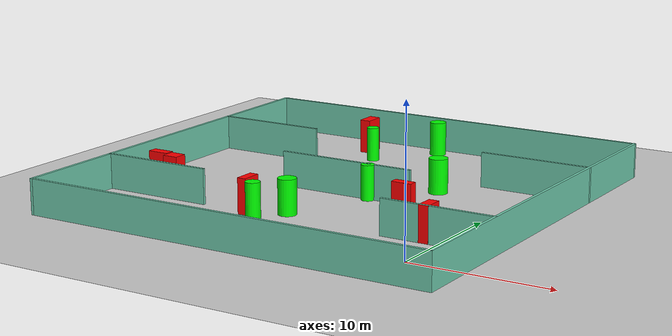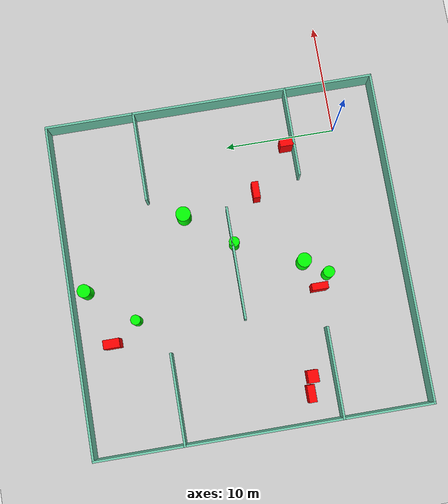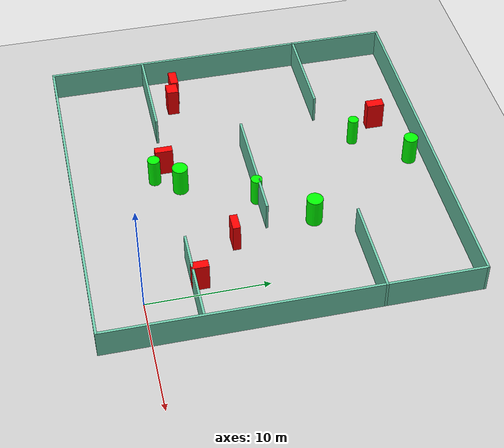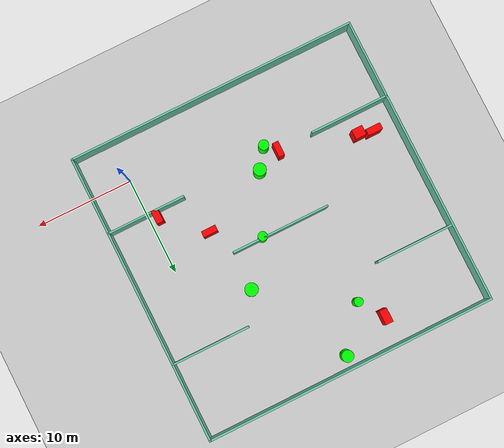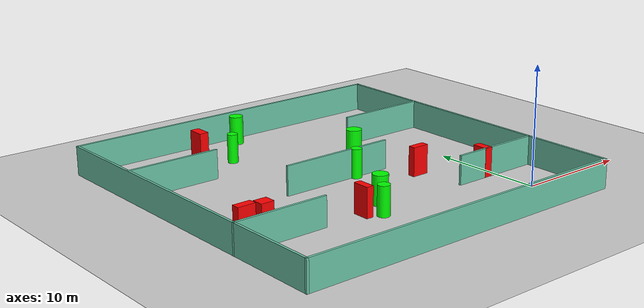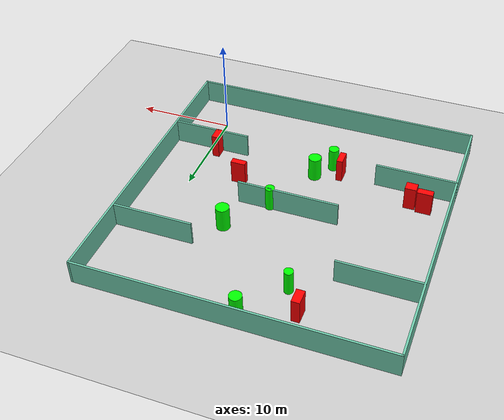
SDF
<sdf version="1.7">
 <world name="default">
  <light name="sun" type="directional">
   <pose>0 0 10 0 -0 0</pose>
   <diffuse>0.8 0.8 0.8 1</diffuse>
   <specular>0.2 0.2 0.2 1</specular>
   <attenuation>
    <range>1000</range>
    <constant>0.9</constant>
    <linear>0.01</linear>
    <quadratic>0.001</quadratic>
   </attenuation>
   <direction>-0.5 0.1 -0.9</direction>
   <spot><inner_angle>0</inner_angle><outer_angle>0</outer_angle><falloff>0</falloff></spot>
  </light>
  <model name="ground_plane">
   <static>1</static>
   <link name="link">
    <collision name="collision">
     <geometry><plane><normal>0 0 1</normal><size>100 100</size></plane></geometry>
     <surface>
      <contact><collide_bitmask>65535</collide_bitmask></contact>
      <friction><ode><mu>100</mu><mu2>50</mu2></ode></friction>
     </surface>
    </collision>
    <visual name="visual">
     <cast_shadows>0</cast_shadows>
     <geometry><plane><normal>0 0 1</normal><size>100 100</size></plane></geometry>
     <material>
      <script><uri>file://media/materials/scripts/gazebo.material</uri><name>Gazebo/Grey</name></script>
     </material>
    </visual>
   </link>
  </model>
  <gravity>0 0 -9.8</gravity>
  <magnetic_field>6e-06 2.3e-05 -4.2e-05</magnetic_field>
  <atmosphere type="adiabatic"/>
  <physics type="ode">
   <max_step_size>0.001</max_step_size>
   <real_time_factor>1</real_time_factor>
   <real_time_update_rate>1000</real_time_update_rate>
  </physics>
  <scene><ambient>0.4 0.4 0.4 1</ambient><background>0.7 0.7 0.7 1</background><shadows>1</shadows></scene>
  <spherical_coordinates>
   <surface_model>EARTH_WGS84</surface_model>
   <latitude_deg>0</latitude_deg>
   <longitude_deg>0</longitude_deg>
   <elevation>0</elevation>
   <heading_deg>0</heading_deg>
  </spherical_coordinates>
  <model name="my_base_walls">
   <link name="Wall_10">
    <collision name="Wall_10_Collision">
     <geometry><box><size>8.2 0.2 2.5</size></box></geometry>
     <pose>0 0 1.25 0 -0 0</pose>
    </collision>
    <visual name="Wall_10_Visual">
     <pose>0 0 1.25 0 -0 0</pose>
     <geometry><box><size>8.2 0.2 2.5</size></box></geometry>
     <material>
      <script><uri>file://media/materials/scripts/gazebo.material</uri><name>Gazebo/Grey</name></script>
      <ambient>0.435294 0.796078 0.67451 1</ambient>
     </material>
     <meta><layer>0</layer></meta>
    </visual>
    <pose>-11 -7 0 0 -0 0</pose>
   </link>
   <link name="Wall_12">
    <collision name="Wall_12_Collision">
     <geometry><box><size>8.2 0.2 2.5</size></box></geometry>
     <pose>0 0 1.25 0 -0 0</pose>
    </collision>
    <visual name="Wall_12_Visual">
     <pose>0 0 1.25 0 -0 0</pose>
     <geometry><box><size>8.2 0.2 2.5</size></box></geometry>
     <material>
      <script><uri>file://media/materials/scripts/gazebo.material</uri><name>Gazebo/Grey</name></script>
      <ambient>0.435294 0.796078 0.67451 1</ambient>
     </material>
     <meta><layer>0</layer></meta>
    </visual>
    <pose>-11 7 0 0 -0 0</pose>
   </link>
   <link name="Wall_14">
    <collision name="Wall_14_Collision">
     <geometry><box><size>8.2 0.2 2.5</size></box></geometry>
     <pose>0 0 1.25 0 -0 0</pose>
    </collision>
    <visual name="Wall_14_Visual">
     <pose>0 0 1.25 0 -0 0</pose>
     <geometry><box><size>8.2 0.2 2.5</size></box></geometry>
     <material>
      <script><uri>file://media/materials/scripts/gazebo.material</uri><name>Gazebo/Grey</name></script>
      <ambient>0.435294 0.796078 0.67451 1</ambient>
     </material>
     <meta><layer>0</layer></meta>
    </visual>
    <pose>11 7 0 0 -0 3.14159</pose>
   </link>
   <link name="Wall_16">
    <collision name="Wall_16_Collision">
     <geometry><box><size>10.2 0.2 2.5</size></box></geometry>
     <pose>0 0 1.25 0 -0 0</pose>
    </collision>
    <visual name="Wall_16_Visual">
     <pose>0 0 1.25 0 -0 0</pose>
     <geometry><box><size>10.2 0.2 2.5</size></box></geometry>
     <material>
      <script><uri>file://media/materials/scripts/gazebo.material</uri><name>Gazebo/Grey</name></script>
      <ambient>0.435294 0.796078 0.67451 1</ambient>
     </material>
     <meta><layer>0</layer></meta>
    </visual>
    <pose>0 0 0 0 -0 3.14159</pose>
   </link>
   <link name="Wall_2">
    <collision name="Wall_2_Collision">
     <geometry><box><size>30.2 0.2 2.5</size></box></geometry>
     <pose>0 0 1.25 0 -0 0</pose>
    </collision>
    <visual name="Wall_2_Visual">
     <pose>0 0 1.25 0 -0 0</pose>
     <geometry><box><size>30.2 0.2 2.5</size></box></geometry>
     <material>
      <script><uri>file://media/materials/scripts/gazebo.material</uri><name>Gazebo/Grey</name></script>
      <ambient>0.435294 0.796078 0.67451 1</ambient>
     </material>
     <meta><layer>0</layer></meta>
    </visual>
    <pose>0 -15 0 0 -0 3.14159</pose>
   </link>
   <link name="Wall_3">
    <collision name="Wall_3_Collision">
     <geometry><box><size>30.2 0.2 2.5</size></box></geometry>
     <pose>0 0 1.25 0 -0 0</pose>
    </collision>
    <visual name="Wall_3_Visual">
     <pose>0 0 1.25 0 -0 0</pose>
     <geometry><box><size>30.2 0.2 2.5</size></box></geometry>
     <material>
      <script><uri>file://media/materials/scripts/gazebo.material</uri><name>Gazebo/Grey</name></script>
      <ambient>0.435294 0.796078 0.67451 1</ambient>
     </material>
     <meta><layer>0</layer></meta>
    </visual>
    <pose>-15 0 0 0 -0 1.5708</pose>
   </link>
   <link name="Wall_4">
    <collision name="Wall_4_Collision">
     <geometry><box><size>30.2 0.2 2.5</size></box></geometry>
     <pose>0 0 1.25 0 -0 0</pose>
    </collision>
    <visual name="Wall_4_Visual">
     <pose>0 0 1.25 0 -0 0</pose>
     <geometry><box><size>30.2 0.2 2.5</size></box></geometry>
     <material>
      <script><uri>file://media/materials/scripts/gazebo.material</uri><name>Gazebo/Grey</name></script>
      <ambient>0.435294 0.796078 0.67451 1</ambient>
     </material>
     <meta><layer>0</layer></meta>
    </visual>
    <pose>0 15 0 0 -0 0</pose>
   </link>
   <link name="Wall_6">
    <collision name="Wall_6_Collision">
     <geometry><box><size>30.2 0.2 2.5</size></box></geometry>
     <pose>0 0 1.25 0 -0 0</pose>
    </collision>
    <visual name="Wall_6_Visual">
     <pose>0 0 1.25 0 -0 0</pose>
     <geometry><box><size>30.2 0.2 2.5</size></box></geometry>
     <material>
      <script><uri>file://media/materials/scripts/gazebo.material</uri><name>Gazebo/Grey</name></script>
      <ambient>0.435294 0.796078 0.67451 1</ambient>
     </material>
     <meta><layer>0</layer></meta>
    </visual>
    <pose>15 0 0 0 -0 1.5708</pose>
   </link>
   <link name="Wall_8">
    <collision name="Wall_8_Collision">
     <geometry><box><size>8.2 0.2 2.5</size></box></geometry>
     <pose>0 0 1.25 0 -0 0</pose>
    </collision>
    <visual name="Wall_8_Visual">
     <pose>0 0 1.25 0 -0 0</pose>
     <geometry><box><size>8.2 0.2 2.5</size></box></geometry>
     <material>
      <script><uri>file://media/materials/scripts/gazebo.material</uri><name>Gazebo/Grey</name></script>
      <ambient>0.435294 0.796078 0.67451 1</ambient>
     </material>
     <meta><layer>0</layer></meta>
    </visual>
    <pose>11 -7 0 0 -0 3.14159</pose>
   </link>
   <static>1</static>
   <pose>-11 11 0 0 -0 0</pose>
  </model>
  <model name="cylinder1">
   <static>1</static>
   <link name="link">
    <inertial>
     <mass>1</mass>
     <inertia><ixx>0.5</ixx><ixy>0</ixy><ixz>0</ixz><iyy>0.5</iyy><iyz>0</iyz><izz>1</izz></inertia>
    </inertial>
    <collision name="collision">
     <geometry><cylinder><radius>0.5164254856508078</radius><length>2.5</length></cylinder></geometry>
    </collision>
    <visual name="visual">
     <geometry><cylinder><radius>0.5164254856508078</radius><length>2.5</length></cylinder></geometry>
     <material>
      <ambient>0 1 0 1</ambient>
      <diffuse>0 1 0 1</diffuse>
      <specular>0.1 0.1 0.1 1</specular>
      <emissive>0 0 0 0</emissive>
     </material>
    </visual>
   </link>
   <pose>-13.189126640280412 2.988313450560181 1.25 0 0 0</pose>
  </model>
  <model name="cylinder2">
   <static>1</static>
   <link name="link">
    <inertial>
     <mass>1</mass>
     <inertia><ixx>0.5</ixx><ixy>0</ixy><ixz>0</ixz><iyy>0.5</iyy><iyz>0</iyz><izz>1</izz></inertia>
    </inertial>
    <collision name="collision">
     <geometry><cylinder><radius>0.6487451991777495</radius><length>2.5</length></cylinder></geometry>
    </collision>
    <visual name="visual">
     <geometry><cylinder><radius>0.6487451991777495</radius><length>2.5</length></cylinder></geometry>
     <material>
      <ambient>0 1 0 1</ambient>
      <diffuse>0 1 0 1</diffuse>
      <specular>0.1 0.1 0.1 1</specular>
      <emissive>0 0 0 0</emissive>
     </material>
    </visual>
   </link>
   <pose>-11.791687194084362 4.9482928364727226 1.25 0 0 0</pose>
  </model>
  <model name="cylinder3">
   <static>1</static>
   <link name="link">
    <inertial>
     <mass>1</mass>
     <inertia><ixx>0.5</ixx><ixy>0</ixy><ixz>0</ixz><iyy>0.5</iyy><iyz>0</iyz><izz>1</izz></inertia>
    </inertial>
    <collision name="collision">
     <geometry><cylinder><radius>0.4726812311642178</radius><length>2.5</length></cylinder></geometry>
    </collision>
    <visual name="visual">
     <geometry><cylinder><radius>0.4726812311642178</radius><length>2.5</length></cylinder></geometry>
     <material>
      <ambient>0 1 0 1</ambient>
      <diffuse>0 1 0 1</diffuse>
      <specular>0.1 0.1 0.1 1</specular>
      <emissive>0 0 0 0</emissive>
     </material>
    </visual>
   </link>
   <pose>-9.143908648490427 10.8494665211924 1.25 0 0 0</pose>
  </model>
  <model name="cylinder4">
   <static>1</static>
   <link name="link">
    <inertial>
     <mass>1</mass>
     <inertia><ixx>0.5</ixx><ixy>0</ixy><ixz>0</ixz><iyy>0.5</iyy><iyz>0</iyz><izz>1</izz></inertia>
    </inertial>
    <collision name="collision">
     <geometry><cylinder><radius>0.6737343099936599</radius><length>2.5</length></cylinder></geometry>
    </collision>
    <visual name="visual">
     <geometry><cylinder><radius>0.6737343099936599</radius><length>2.5</length></cylinder></geometry>
     <material>
      <ambient>0 1 0 1</ambient>
      <diffuse>0 1 0 1</diffuse>
      <specular>0.1 0.1 0.1 1</specular>
      <emissive>0 0 0 0</emissive>
     </material>
    </visual>
   </link>
   <pose>-5.902030109923224 14.943611459500183 1.25 0 0 0</pose>
  </model>
  <model name="cylinder5">
   <static>1</static>
   <link name="link">
    <inertial>
     <mass>1</mass>
     <inertia><ixx>0.5</ixx><ixy>0</ixy><ixz>0</ixz><iyy>0.5</iyy><iyz>0</iyz><izz>1</izz></inertia>
    </inertial>
    <collision name="collision">
     <geometry><cylinder><radius>0.44718586697611135</radius><length>2.5</length></cylinder></geometry>
    </collision>
    <visual name="visual">
     <geometry><cylinder><radius>0.44718586697611135</radius><length>2.5</length></cylinder></geometry>
     <material>
      <ambient>0 1 0 1</ambient>
      <diffuse>0 1 0 1</diffuse>
      <specular>0.1 0.1 0.1 1</specular>
      <emissive>0 0 0 0</emissive>
     </material>
    </visual>
   </link>
   <pose>-14.543322751751 20.5764255499613 1.25 0 0 0</pose>
  </model>
  <model name="cylinder6">
   <static>1</static>
   <link name="link">
    <inertial>
     <mass>1</mass>
     <inertia><ixx>0.5</ixx><ixy>0</ixy><ixz>0</ixz><iyy>0.5</iyy><iyz>0</iyz><izz>1</izz></inertia>
    </inertial>
    <collision name="collision">
     <geometry><cylinder><radius>0.5996524902012318</radius><length>2.5</length></cylinder></geometry>
    </collision>
    <visual name="visual">
     <geometry><cylinder><radius>0.5996524902012318</radius><length>2.5</length></cylinder></geometry>
     <material>
      <ambient>0 1 0 1</ambient>
      <diffuse>0 1 0 1</diffuse>
      <specular>0.1 0.1 0.1 1</specular>
      <emissive>0 0 0 0</emissive>
     </material>
    </visual>
   </link>
   <pose>-11.268914751126967 24.71186912817905 1.25 0 0 0</pose>
  </model>
  <model name="box1">
   <static>1</static>
   <link name="link">
    <inertial>
     <mass>1</mass>
     <inertia><ixx>0.083</ixx><ixy>0</ixy><ixz>0</ixz><iyy>0.083</iyy><iyz>0</iyz><izz>0.083</izz></inertia>
    </inertial>
    <collision name="collision">
     <geometry><box><size>1.5324405068251223 0.6936867285019048 2.5</size></box></geometry>
    </collision>
    <visual name="visual">
     <geometry><box><size>1.5324405068251223 0.6936867285019048 2.5</size></box></geometry>
     <material>
      <ambient>1 0 0 1</ambient>
      <diffuse>1 0 0 1</diffuse>
      <specular>0.1 0.1 0.1 1</specular>
      <emissive>0 0 0 0</emissive>
     </material>
    </visual>
    <sensor name="my_contact" type="contact">
     <contact><collision>box_collision</collision><topic>__default_topic__</topic></contact>
    </sensor>
   </link>
   <pose>-23.436698998535825 6.39215782334294 1.25 0 0 0</pose>
  </model>
  <model name="box2">
   <static>1</static>
   <link name="link">
    <inertial>
     <mass>1</mass>
     <inertia><ixx>0.083</ixx><ixy>0</ixy><ixz>0</ixz><iyy>0.083</iyy><iyz>0</iyz><izz>0.083</izz></inertia>
    </inertial>
    <collision name="collision">
     <geometry><box><size>0.8097699074397973 1.4777617997203252 2.5</size></box></geometry>
    </collision>
    <visual name="visual">
     <geometry><box><size>0.8097699074397973 1.4777617997203252 2.5</size></box></geometry>
     <material>
      <ambient>1 0 0 1</ambient>
      <diffuse>1 0 0 1</diffuse>
      <specular>0.1 0.1 0.1 1</specular>
      <emissive>0 0 0 0</emissive>
     </material>
    </visual>
    <sensor name="my_contact" type="contact">
     <contact><collision>box_collision</collision><topic>__default_topic__</topic></contact>
    </sensor>
   </link>
   <pose>-16.24955640935126 22.9864782591594 1.25 0 0 0</pose>
  </model>
  <model name="box3">
   <static>1</static>
   <link name="link">
    <inertial>
     <mass>1</mass>
     <inertia><ixx>0.083</ixx><ixy>0</ixy><ixz>0</ixz><iyy>0.083</iyy><iyz>0</iyz><izz>0.083</izz></inertia>
    </inertial>
    <collision name="collision">
     <geometry><box><size>0.7117411285739031 1.3790756195184177 2.5</size></box></geometry>
    </collision>
    <visual name="visual">
     <geometry><box><size>0.7117411285739031 1.3790756195184177 2.5</size></box></geometry>
     <material>
      <ambient>1 0 0 1</ambient>
      <diffuse>1 0 0 1</diffuse>
      <specular>0.1 0.1 0.1 1</specular>
      <emissive>0 0 0 0</emissive>
     </material>
    </visual>
    <sensor name="my_contact" type="contact">
     <contact><collision>box_collision</collision><topic>__default_topic__</topic></contact>
    </sensor>
   </link>
   <pose>-0.937087816959842 4.5853278286665695 1.25 0 0 0</pose>
  </model>
  <model name="box4">
   <static>1</static>
   <link name="link">
    <inertial>
     <mass>1</mass>
     <inertia><ixx>0.083</ixx><ixy>0</ixy><ixz>0</ixz><iyy>0.083</iyy><iyz>0</iyz><izz>0.083</izz></inertia>
    </inertial>
    <collision name="collision">
     <geometry><box><size>1.4922999458606991 0.6262685557419397 2.5</size></box></geometry>
    </collision>
    <visual name="visual">
     <geometry><box><size>1.4922999458606991 0.6262685557419397 2.5</size></box></geometry>
     <material>
      <ambient>1 0 0 1</ambient>
      <diffuse>1 0 0 1</diffuse>
      <specular>0.1 0.1 0.1 1</specular>
      <emissive>0 0 0 0</emissive>
     </material>
    </visual>
    <sensor name="my_contact" type="contact">
     <contact><collision>box_collision</collision><topic>__default_topic__</topic></contact>
    </sensor>
   </link>
   <pose>-4.799696509110845 8.137228514773396 1.25 0 0 0</pose>
  </model>
  <model name="box5">
   <static>1</static>
   <link name="link">
    <inertial>
     <mass>1</mass>
     <inertia><ixx>0.083</ixx><ixy>0</ixy><ixz>0</ixz><iyy>0.083</iyy><iyz>0</iyz><izz>0.083</izz></inertia>
    </inertial>
    <collision name="collision">
     <geometry><box><size>0.6176161929737084 1.4873042049534593 2.5</size></box></geometry>
    </collision>
    <visual name="visual">
     <geometry><box><size>0.6176161929737084 1.4873042049534593 2.5</size></box></geometry>
     <material>
      <ambient>1 0 0 1</ambient>
      <diffuse>1 0 0 1</diffuse>
      <specular>0.1 0.1 0.1 1</specular>
      <emissive>0 0 0 0</emissive>
     </material>
    </visual>
    <sensor name="my_contact" type="contact">
     <contact><collision>box_collision</collision><topic>__default_topic__</topic></contact>
    </sensor>
   </link>
   <pose>-14.297776584474041 3.9988097871800763 1.25 0 0 0</pose>
  </model>
  <model name="box6">
   <static>1</static>
   <link name="link">
    <inertial>
     <mass>1</mass>
     <inertia><ixx>0.083</ixx><ixy>0</ixy><ixz>0</ixz><iyy>0.083</iyy><iyz>0</iyz><izz>0.083</izz></inertia>
    </inertial>
    <collision name="collision">
     <geometry><box><size>1.132648176148681 0.9862558598898017 2.5</size></box></geometry>
    </collision>
    <visual name="visual">
     <geometry><box><size>1.132648176148681 0.9862558598898017 2.5</size></box></geometry>
     <material>
      <ambient>1 0 0 1</ambient>
      <diffuse>1 0 0 1</diffuse>
      <specular>0.1 0.1 0.1 1</specular>
      <emissive>0 0 0 0</emissive>
     </material>
    </visual>
    <sensor name="my_contact" type="contact">
     <contact><collision>box_collision</collision><topic>__default_topic__</topic></contact>
    </sensor>
   </link>
   <pose>-21.982423103884216 6.017163280858144 1.25 0 0 0</pose>
  </model>
 </world>
</sdf>
